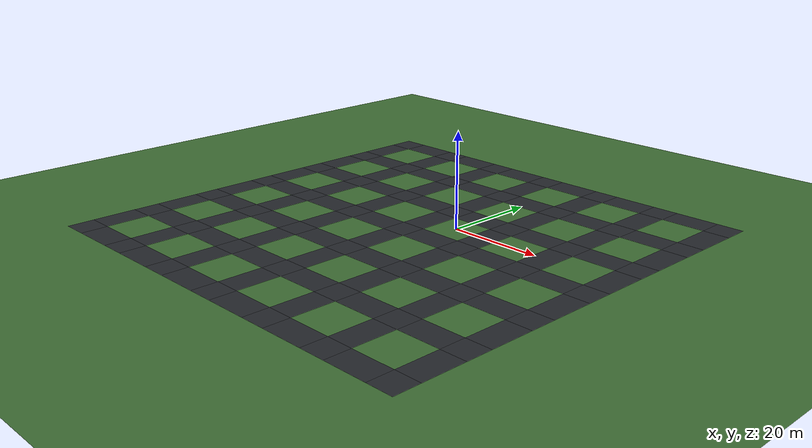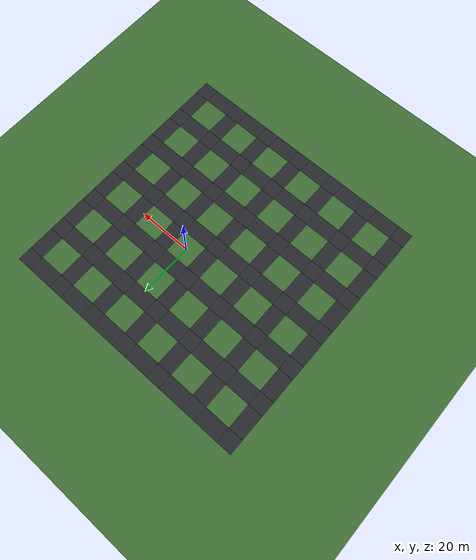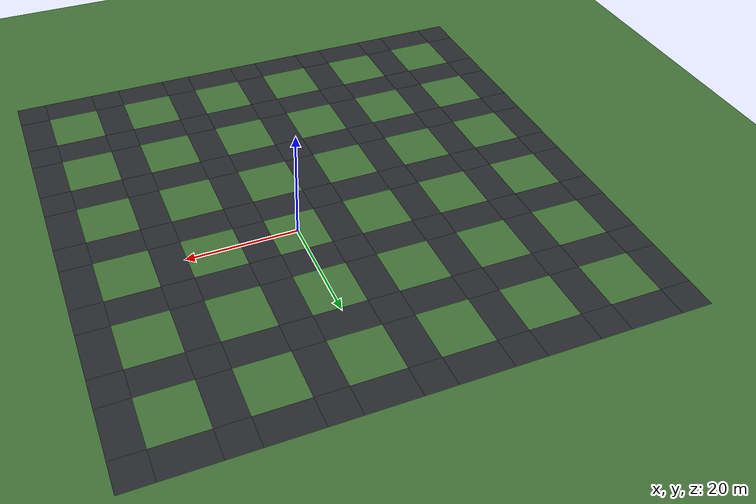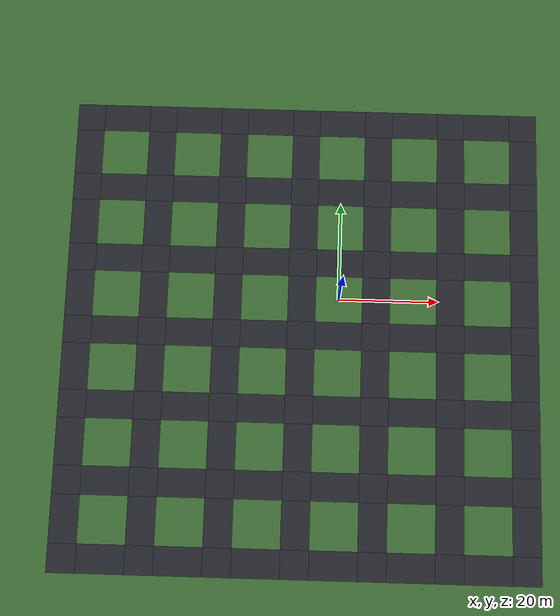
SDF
<sdf version="1.7">
 <world name="city_world">
  <model name="ground_plane">
   <static>true</static>
   <link name="link">
    <collision name="collision">
     <geometry><plane><normal>0 0 1</normal><size>300 300</size></plane></geometry>
     <surface><friction><ode><mu>100</mu><mu2>50</mu2></ode></friction></surface>
    </collision>
    <visual name="visual">
     <geometry><plane><normal>0 0 1</normal><size>300 300</size></plane></geometry>
     <material><ambient>0.24 0.42 0.20 1</ambient><diffuse>0.24 0.42 0.20 1</diffuse></material>
    </visual>
   </link>
  </model>
  <model name="city_roads">
   <static>true</static>
   <link name="link">
    <visual name="junc_0_0">
     <pose>-52.5 -52.5 0.01 0 0 0</pose>
     <geometry><box><size>5.6 5.6 0.02</size></box></geometry>
     <material><ambient>0.12 0.13 0.15 1</ambient><diffuse>0.14 0.15 0.17 1</diffuse></material>
    </visual>
    <visual name="junc_0_1">
     <pose>-52.5 -37.5 0.01 0 0 0</pose>
     <geometry><box><size>5.6 5.6 0.02</size></box></geometry>
     <material><ambient>0.12 0.13 0.15 1</ambient><diffuse>0.14 0.15 0.17 1</diffuse></material>
    </visual>
    <visual name="junc_0_2">
     <pose>-52.5 -22.5 0.01 0 0 0</pose>
     <geometry><box><size>5.6 5.6 0.02</size></box></geometry>
     <material><ambient>0.12 0.13 0.15 1</ambient><diffuse>0.14 0.15 0.17 1</diffuse></material>
    </visual>
    <visual name="junc_0_3">
     <pose>-52.5 -7.5 0.01 0 0 0</pose>
     <geometry><box><size>5.6 5.6 0.02</size></box></geometry>
     <material><ambient>0.12 0.13 0.15 1</ambient><diffuse>0.14 0.15 0.17 1</diffuse></material>
    </visual>
    <visual name="junc_0_4">
     <pose>-52.5 7.5 0.01 0 0 0</pose>
     <geometry><box><size>5.6 5.6 0.02</size></box></geometry>
     <material><ambient>0.12 0.13 0.15 1</ambient><diffuse>0.14 0.15 0.17 1</diffuse></material>
    </visual>
    <visual name="junc_0_5">
     <pose>-52.5 22.5 0.01 0 0 0</pose>
     <geometry><box><size>5.6 5.6 0.02</size></box></geometry>
     <material><ambient>0.12 0.13 0.15 1</ambient><diffuse>0.14 0.15 0.17 1</diffuse></material>
    </visual>
    <visual name="junc_0_6">
     <pose>-52.5 37.5 0.01 0 0 0</pose>
     <geometry><box><size>5.6 5.6 0.02</size></box></geometry>
     <material><ambient>0.12 0.13 0.15 1</ambient><diffuse>0.14 0.15 0.17 1</diffuse></material>
    </visual>
    <visual name="junc_1_0">
     <pose>-37.5 -52.5 0.01 0 0 0</pose>
     <geometry><box><size>5.6 5.6 0.02</size></box></geometry>
     <material><ambient>0.12 0.13 0.15 1</ambient><diffuse>0.14 0.15 0.17 1</diffuse></material>
    </visual>
    <visual name="junc_1_1">
     <pose>-37.5 -37.5 0.01 0 0 0</pose>
     <geometry><box><size>5.6 5.6 0.02</size></box></geometry>
     <material><ambient>0.12 0.13 0.15 1</ambient><diffuse>0.14 0.15 0.17 1</diffuse></material>
    </visual>
    <visual name="junc_1_2">
     <pose>-37.5 -22.5 0.01 0 0 0</pose>
     <geometry><box><size>5.6 5.6 0.02</size></box></geometry>
     <material><ambient>0.12 0.13 0.15 1</ambient><diffuse>0.14 0.15 0.17 1</diffuse></material>
    </visual>
    <visual name="junc_1_3">
     <pose>-37.5 -7.5 0.01 0 0 0</pose>
     <geometry><box><size>5.6 5.6 0.02</size></box></geometry>
     <material><ambient>0.12 0.13 0.15 1</ambient><diffuse>0.14 0.15 0.17 1</diffuse></material>
    </visual>
    <visual name="junc_1_4">
     <pose>-37.5 7.5 0.01 0 0 0</pose>
     <geometry><box><size>5.6 5.6 0.02</size></box></geometry>
     <material><ambient>0.12 0.13 0.15 1</ambient><diffuse>0.14 0.15 0.17 1</diffuse></material>
    </visual>
    <visual name="junc_1_5">
     <pose>-37.5 22.5 0.01 0 0 0</pose>
     <geometry><box><size>5.6 5.6 0.02</size></box></geometry>
     <material><ambient>0.12 0.13 0.15 1</ambient><diffuse>0.14 0.15 0.17 1</diffuse></material>
    </visual>
    <visual name="junc_1_6">
     <pose>-37.5 37.5 0.01 0 0 0</pose>
     <geometry><box><size>5.6 5.6 0.02</size></box></geometry>
     <material><ambient>0.12 0.13 0.15 1</ambient><diffuse>0.14 0.15 0.17 1</diffuse></material>
    </visual>
    <visual name="junc_2_0">
     <pose>-22.5 -52.5 0.01 0 0 0</pose>
     <geometry><box><size>5.6 5.6 0.02</size></box></geometry>
     <material><ambient>0.12 0.13 0.15 1</ambient><diffuse>0.14 0.15 0.17 1</diffuse></material>
    </visual>
    <visual name="junc_2_1">
     <pose>-22.5 -37.5 0.01 0 0 0</pose>
     <geometry><box><size>5.6 5.6 0.02</size></box></geometry>
     <material><ambient>0.12 0.13 0.15 1</ambient><diffuse>0.14 0.15 0.17 1</diffuse></material>
    </visual>
    <visual name="junc_2_2">
     <pose>-22.5 -22.5 0.01 0 0 0</pose>
     <geometry><box><size>5.6 5.6 0.02</size></box></geometry>
     <material><ambient>0.12 0.13 0.15 1</ambient><diffuse>0.14 0.15 0.17 1</diffuse></material>
    </visual>
    <visual name="junc_2_3">
     <pose>-22.5 -7.5 0.01 0 0 0</pose>
     <geometry><box><size>5.6 5.6 0.02</size></box></geometry>
     <material><ambient>0.12 0.13 0.15 1</ambient><diffuse>0.14 0.15 0.17 1</diffuse></material>
    </visual>
    <visual name="junc_2_4">
     <pose>-22.5 7.5 0.01 0 0 0</pose>
     <geometry><box><size>5.6 5.6 0.02</size></box></geometry>
     <material><ambient>0.12 0.13 0.15 1</ambient><diffuse>0.14 0.15 0.17 1</diffuse></material>
    </visual>
    <visual name="junc_2_5">
     <pose>-22.5 22.5 0.01 0 0 0</pose>
     <geometry><box><size>5.6 5.6 0.02</size></box></geometry>
     <material><ambient>0.12 0.13 0.15 1</ambient><diffuse>0.14 0.15 0.17 1</diffuse></material>
    </visual>
    <visual name="junc_2_6">
     <pose>-22.5 37.5 0.01 0 0 0</pose>
     <geometry><box><size>5.6 5.6 0.02</size></box></geometry>
     <material><ambient>0.12 0.13 0.15 1</ambient><diffuse>0.14 0.15 0.17 1</diffuse></material>
    </visual>
    <visual name="junc_3_0">
     <pose>-7.5 -52.5 0.01 0 0 0</pose>
     <geometry><box><size>5.6 5.6 0.02</size></box></geometry>
     <material><ambient>0.12 0.13 0.15 1</ambient><diffuse>0.14 0.15 0.17 1</diffuse></material>
    </visual>
    <visual name="junc_3_1">
     <pose>-7.5 -37.5 0.01 0 0 0</pose>
     <geometry><box><size>5.6 5.6 0.02</size></box></geometry>
     <material><ambient>0.12 0.13 0.15 1</ambient><diffuse>0.14 0.15 0.17 1</diffuse></material>
    </visual>
    <visual name="junc_3_2">
     <pose>-7.5 -22.5 0.01 0 0 0</pose>
     <geometry><box><size>5.6 5.6 0.02</size></box></geometry>
     <material><ambient>0.12 0.13 0.15 1</ambient><diffuse>0.14 0.15 0.17 1</diffuse></material>
    </visual>
    <visual name="junc_3_3">
     <pose>-7.5 -7.5 0.01 0 0 0</pose>
     <geometry><box><size>5.6 5.6 0.02</size></box></geometry>
     <material><ambient>0.12 0.13 0.15 1</ambient><diffuse>0.14 0.15 0.17 1</diffuse></material>
    </visual>
    <visual name="junc_3_4">
     <pose>-7.5 7.5 0.01 0 0 0</pose>
     <geometry><box><size>5.6 5.6 0.02</size></box></geometry>
     <material><ambient>0.12 0.13 0.15 1</ambient><diffuse>0.14 0.15 0.17 1</diffuse></material>
    </visual>
    <visual name="junc_3_5">
     <pose>-7.5 22.5 0.01 0 0 0</pose>
     <geometry><box><size>5.6 5.6 0.02</size></box></geometry>
     <material><ambient>0.12 0.13 0.15 1</ambient><diffuse>0.14 0.15 0.17 1</diffuse></material>
    </visual>
    <visual name="junc_3_6">
     <pose>-7.5 37.5 0.01 0 0 0</pose>
     <geometry><box><size>5.6 5.6 0.02</size></box></geometry>
     <material><ambient>0.12 0.13 0.15 1</ambient><diffuse>0.14 0.15 0.17 1</diffuse></material>
    </visual>
    <visual name="junc_4_0">
     <pose>7.5 -52.5 0.01 0 0 0</pose>
     <geometry><box><size>5.6 5.6 0.02</size></box></geometry>
     <material><ambient>0.12 0.13 0.15 1</ambient><diffuse>0.14 0.15 0.17 1</diffuse></material>
    </visual>
    <visual name="junc_4_1">
     <pose>7.5 -37.5 0.01 0 0 0</pose>
     <geometry><box><size>5.6 5.6 0.02</size></box></geometry>
     <material><ambient>0.12 0.13 0.15 1</ambient><diffuse>0.14 0.15 0.17 1</diffuse></material>
    </visual>
    <visual name="junc_4_2">
     <pose>7.5 -22.5 0.01 0 0 0</pose>
     <geometry><box><size>5.6 5.6 0.02</size></box></geometry>
     <material><ambient>0.12 0.13 0.15 1</ambient><diffuse>0.14 0.15 0.17 1</diffuse></material>
    </visual>
    <visual name="junc_4_3">
     <pose>7.5 -7.5 0.01 0 0 0</pose>
     <geometry><box><size>5.6 5.6 0.02</size></box></geometry>
     <material><ambient>0.12 0.13 0.15 1</ambient><diffuse>0.14 0.15 0.17 1</diffuse></material>
    </visual>
    <visual name="junc_4_4">
     <pose>7.5 7.5 0.01 0 0 0</pose>
     <geometry><box><size>5.6 5.6 0.02</size></box></geometry>
     <material><ambient>0.12 0.13 0.15 1</ambient><diffuse>0.14 0.15 0.17 1</diffuse></material>
    </visual>
    <visual name="junc_4_5">
     <pose>7.5 22.5 0.01 0 0 0</pose>
     <geometry><box><size>5.6 5.6 0.02</size></box></geometry>
     <material><ambient>0.12 0.13 0.15 1</ambient><diffuse>0.14 0.15 0.17 1</diffuse></material>
    </visual>
    <visual name="junc_4_6">
     <pose>7.5 37.5 0.01 0 0 0</pose>
     <geometry><box><size>5.6 5.6 0.02</size></box></geometry>
     <material><ambient>0.12 0.13 0.15 1</ambient><diffuse>0.14 0.15 0.17 1</diffuse></material>
    </visual>
    <visual name="junc_5_0">
     <pose>22.5 -52.5 0.01 0 0 0</pose>
     <geometry><box><size>5.6 5.6 0.02</size></box></geometry>
     <material><ambient>0.12 0.13 0.15 1</ambient><diffuse>0.14 0.15 0.17 1</diffuse></material>
    </visual>
    <visual name="junc_5_1">
     <pose>22.5 -37.5 0.01 0 0 0</pose>
     <geometry><box><size>5.6 5.6 0.02</size></box></geometry>
     <material><ambient>0.12 0.13 0.15 1</ambient><diffuse>0.14 0.15 0.17 1</diffuse></material>
    </visual>
    <visual name="junc_5_2">
     <pose>22.5 -22.5 0.01 0 0 0</pose>
     <geometry><box><size>5.6 5.6 0.02</size></box></geometry>
     <material><ambient>0.12 0.13 0.15 1</ambient><diffuse>0.14 0.15 0.17 1</diffuse></material>
    </visual>
    <visual name="junc_5_3">
     <pose>22.5 -7.5 0.01 0 0 0</pose>
     <geometry><box><size>5.6 5.6 0.02</size></box></geometry>
     <material><ambient>0.12 0.13 0.15 1</ambient><diffuse>0.14 0.15 0.17 1</diffuse></material>
    </visual>
    <visual name="junc_5_4">
     <pose>22.5 7.5 0.01 0 0 0</pose>
     <geometry><box><size>5.6 5.6 0.02</size></box></geometry>
     <material><ambient>0.12 0.13 0.15 1</ambient><diffuse>0.14 0.15 0.17 1</diffuse></material>
    </visual>
    <visual name="junc_5_5">
     <pose>22.5 22.5 0.01 0 0 0</pose>
     <geometry><box><size>5.6 5.6 0.02</size></box></geometry>
     <material><ambient>0.12 0.13 0.15 1</ambient><diffuse>0.14 0.15 0.17 1</diffuse></material>
    </visual>
    <visual name="junc_5_6">
     <pose>22.5 37.5 0.01 0 0 0</pose>
     <geometry><box><size>5.6 5.6 0.02</size></box></geometry>
     <material><ambient>0.12 0.13 0.15 1</ambient><diffuse>0.14 0.15 0.17 1</diffuse></material>
    </visual>
    <visual name="junc_6_0">
     <pose>37.5 -52.5 0.01 0 0 0</pose>
     <geometry><box><size>5.6 5.6 0.02</size></box></geometry>
     <material><ambient>0.12 0.13 0.15 1</ambient><diffuse>0.14 0.15 0.17 1</diffuse></material>
    </visual>
    <visual name="junc_6_1">
     <pose>37.5 -37.5 0.01 0 0 0</pose>
     <geometry><box><size>5.6 5.6 0.02</size></box></geometry>
     <material><ambient>0.12 0.13 0.15 1</ambient><diffuse>0.14 0.15 0.17 1</diffuse></material>
    </visual>
    <visual name="junc_6_2">
     <pose>37.5 -22.5 0.01 0 0 0</pose>
     <geometry><box><size>5.6 5.6 0.02</size></box></geometry>
     <material><ambient>0.12 0.13 0.15 1</ambient><diffuse>0.14 0.15 0.17 1</diffuse></material>
    </visual>
    <visual name="junc_6_3">
     <pose>37.5 -7.5 0.01 0 0 0</pose>
     <geometry><box><size>5.6 5.6 0.02</size></box></geometry>
     <material><ambient>0.12 0.13 0.15 1</ambient><diffuse>0.14 0.15 0.17 1</diffuse></material>
    </visual>
    <visual name="junc_6_4">
     <pose>37.5 7.5 0.01 0 0 0</pose>
     <geometry><box><size>5.6 5.6 0.02</size></box></geometry>
     <material><ambient>0.12 0.13 0.15 1</ambient><diffuse>0.14 0.15 0.17 1</diffuse></material>
    </visual>
    <visual name="junc_6_5">
     <pose>37.5 22.5 0.01 0 0 0</pose>
     <geometry><box><size>5.6 5.6 0.02</size></box></geometry>
     <material><ambient>0.12 0.13 0.15 1</ambient><diffuse>0.14 0.15 0.17 1</diffuse></material>
    </visual>
    <visual name="junc_6_6">
     <pose>37.5 37.5 0.01 0 0 0</pose>
     <geometry><box><size>5.6 5.6 0.02</size></box></geometry>
     <material><ambient>0.12 0.13 0.15 1</ambient><diffuse>0.14 0.15 0.17 1</diffuse></material>
    </visual>
    <visual name="road_ew_0_0">
     <pose>-45.0 -52.5 0.01 0 0 0</pose>
     <geometry><box><size>9.4 5.6 0.02</size></box></geometry>
     <material><ambient>0.12 0.13 0.15 1</ambient><diffuse>0.14 0.15 0.17 1</diffuse></material>
    </visual>
    <visual name="road_ew_0_1">
     <pose>-45.0 -37.5 0.01 0 0 0</pose>
     <geometry><box><size>9.4 5.6 0.02</size></box></geometry>
     <material><ambient>0.12 0.13 0.15 1</ambient><diffuse>0.14 0.15 0.17 1</diffuse></material>
    </visual>
    <visual name="road_ew_0_2">
     <pose>-45.0 -22.5 0.01 0 0 0</pose>
     <geometry><box><size>9.4 5.6 0.02</size></box></geometry>
     <material><ambient>0.12 0.13 0.15 1</ambient><diffuse>0.14 0.15 0.17 1</diffuse></material>
    </visual>
    <visual name="road_ew_0_3">
     <pose>-45.0 -7.5 0.01 0 0 0</pose>
     <geometry><box><size>9.4 5.6 0.02</size></box></geometry>
     <material><ambient>0.12 0.13 0.15 1</ambient><diffuse>0.14 0.15 0.17 1</diffuse></material>
    </visual>
    <visual name="road_ew_0_4">
     <pose>-45.0 7.5 0.01 0 0 0</pose>
     <geometry><box><size>9.4 5.6 0.02</size></box></geometry>
     <material><ambient>0.12 0.13 0.15 1</ambient><diffuse>0.14 0.15 0.17 1</diffuse></material>
    </visual>
    <visual name="road_ew_0_5">
     <pose>-45.0 22.5 0.01 0 0 0</pose>
     <geometry><box><size>9.4 5.6 0.02</size></box></geometry>
     <material><ambient>0.12 0.13 0.15 1</ambient><diffuse>0.14 0.15 0.17 1</diffuse></material>
    </visual>
    <visual name="road_ew_0_6">
     <pose>-45.0 37.5 0.01 0 0 0</pose>
     <geometry><box><size>9.4 5.6 0.02</size></box></geometry>
     <material><ambient>0.12 0.13 0.15 1</ambient><diffuse>0.14 0.15 0.17 1</diffuse></material>
    </visual>
    <visual name="road_ew_1_0">
     <pose>-30.0 -52.5 0.01 0 0 0</pose>
     <geometry><box><size>9.4 5.6 0.02</size></box></geometry>
     <material><ambient>0.12 0.13 0.15 1</ambient><diffuse>0.14 0.15 0.17 1</diffuse></material>
    </visual>
    <visual name="road_ew_1_1">
     <pose>-30.0 -37.5 0.01 0 0 0</pose>
     <geometry><box><size>9.4 5.6 0.02</size></box></geometry>
     <material><ambient>0.12 0.13 0.15 1</ambient><diffuse>0.14 0.15 0.17 1</diffuse></material>
    </visual>
    <visual name="road_ew_1_2">
     <pose>-30.0 -22.5 0.01 0 0 0</pose>
     <geometry><box><size>9.4 5.6 0.02</size></box></geometry>
     <material><ambient>0.12 0.13 0.15 1</ambient><diffuse>0.14 0.15 0.17 1</diffuse></material>
    </visual>
    <visual name="road_ew_1_3">
     <pose>-30.0 -7.5 0.01 0 0 0</pose>
     <geometry><box><size>9.4 5.6 0.02</size></box></geometry>
     <material><ambient>0.12 0.13 0.15 1</ambient><diffuse>0.14 0.15 0.17 1</diffuse></material>
    </visual>
    <visual name="road_ew_1_4">
     <pose>-30.0 7.5 0.01 0 0 0</pose>
     <geometry><box><size>9.4 5.6 0.02</size></box></geometry>
     <material><ambient>0.12 0.13 0.15 1</ambient><diffuse>0.14 0.15 0.17 1</diffuse></material>
    </visual>
    <visual name="road_ew_1_5">
     <pose>-30.0 22.5 0.01 0 0 0</pose>
     <geometry><box><size>9.4 5.6 0.02</size></box></geometry>
     <material><ambient>0.12 0.13 0.15 1</ambient><diffuse>0.14 0.15 0.17 1</diffuse></material>
    </visual>
    <visual name="road_ew_1_6">
     <pose>-30.0 37.5 0.01 0 0 0</pose>
     <geometry><box><size>9.4 5.6 0.02</size></box></geometry>
     <material><ambient>0.12 0.13 0.15 1</ambient><diffuse>0.14 0.15 0.17 1</diffuse></material>
    </visual>
    <visual name="road_ew_2_0">
     <pose>-15.0 -52.5 0.01 0 0 0</pose>
     <geometry><box><size>9.4 5.6 0.02</size></box></geometry>
     <material><ambient>0.12 0.13 0.15 1</ambient><diffuse>0.14 0.15 0.17 1</diffuse></material>
    </visual>
    <visual name="road_ew_2_1">
     <pose>-15.0 -37.5 0.01 0 0 0</pose>
     <geometry><box><size>9.4 5.6 0.02</size></box></geometry>
     <material><ambient>0.12 0.13 0.15 1</ambient><diffuse>0.14 0.15 0.17 1</diffuse></material>
    </visual>
    <visual name="road_ew_2_2">
     <pose>-15.0 -22.5 0.01 0 0 0</pose>
     <geometry><box><size>9.4 5.6 0.02</size></box></geometry>
     <material><ambient>0.12 0.13 0.15 1</ambient><diffuse>0.14 0.15 0.17 1</diffuse></material>
    </visual>
    <visual name="road_ew_2_3">
     <pose>-15.0 -7.5 0.01 0 0 0</pose>
     <geometry><box><size>9.4 5.6 0.02</size></box></geometry>
     <material><ambient>0.12 0.13 0.15 1</ambient><diffuse>0.14 0.15 0.17 1</diffuse></material>
    </visual>
    <visual name="road_ew_2_4">
     <pose>-15.0 7.5 0.01 0 0 0</pose>
     <geometry><box><size>9.4 5.6 0.02</size></box></geometry>
     <material><ambient>0.12 0.13 0.15 1</ambient><diffuse>0.14 0.15 0.17 1</diffuse></material>
    </visual>
    <visual name="road_ew_2_5">
     <pose>-15.0 22.5 0.01 0 0 0</pose>
     <geometry><box><size>9.4 5.6 0.02</size></box></geometry>
     <material><ambient>0.12 0.13 0.15 1</ambient><diffuse>0.14 0.15 0.17 1</diffuse></material>
    </visual>
    <visual name="road_ew_2_6">
     <pose>-15.0 37.5 0.01 0 0 0</pose>
     <geometry><box><size>9.4 5.6 0.02</size></box></geometry>
     <material><ambient>0.12 0.13 0.15 1</ambient><diffuse>0.14 0.15 0.17 1</diffuse></material>
    </visual>
    <visual name="road_ew_3_0">
     <pose>0.0 -52.5 0.01 0 0 0</pose>
     <geometry><box><size>9.4 5.6 0.02</size></box></geometry>
     <material><ambient>0.12 0.13 0.15 1</ambient><diffuse>0.14 0.15 0.17 1</diffuse></material>
    </visual>
    <visual name="road_ew_3_1">
     <pose>0.0 -37.5 0.01 0 0 0</pose>
     <geometry><box><size>9.4 5.6 0.02</size></box></geometry>
     <material><ambient>0.12 0.13 0.15 1</ambient><diffuse>0.14 0.15 0.17 1</diffuse></material>
    </visual>
    <visual name="road_ew_3_2">
     <pose>0.0 -22.5 0.01 0 0 0</pose>
     <geometry><box><size>9.4 5.6 0.02</size></box></geometry>
     <material><ambient>0.12 0.13 0.15 1</ambient><diffuse>0.14 0.15 0.17 1</diffuse></material>
    </visual>
    <visual name="road_ew_3_3">
     <pose>0.0 -7.5 0.01 0 0 0</pose>
     <geometry><box><size>9.4 5.6 0.02</size></box></geometry>
     <material><ambient>0.12 0.13 0.15 1</ambient><diffuse>0.14 0.15 0.17 1</diffuse></material>
    </visual>
    <visual name="road_ew_3_4">
     <pose>0.0 7.5 0.01 0 0 0</pose>
     <geometry><box><size>9.4 5.6 0.02</size></box></geometry>
     <material><ambient>0.12 0.13 0.15 1</ambient><diffuse>0.14 0.15 0.17 1</diffuse></material>
    </visual>
    <visual name="road_ew_3_5">
     <pose>0.0 22.5 0.01 0 0 0</pose>
     <geometry><box><size>9.4 5.6 0.02</size></box></geometry>
     <material><ambient>0.12 0.13 0.15 1</ambient><diffuse>0.14 0.15 0.17 1</diffuse></material>
    </visual>
    <visual name="road_ew_3_6">
     <pose>0.0 37.5 0.01 0 0 0</pose>
     <geometry><box><size>9.4 5.6 0.02</size></box></geometry>
     <material><ambient>0.12 0.13 0.15 1</ambient><diffuse>0.14 0.15 0.17 1</diffuse></material>
    </visual>
    <visual name="road_ew_4_0">
     <pose>15.0 -52.5 0.01 0 0 0</pose>
     <geometry><box><size>9.4 5.6 0.02</size></box></geometry>
     <material><ambient>0.12 0.13 0.15 1</ambient><diffuse>0.14 0.15 0.17 1</diffuse></material>
    </visual>
    <visual name="road_ew_4_1">
     <pose>15.0 -37.5 0.01 0 0 0</pose>
     <geometry><box><size>9.4 5.6 0.02</size></box></geometry>
     <material><ambient>0.12 0.13 0.15 1</ambient><diffuse>0.14 0.15 0.17 1</diffuse></material>
    </visual>
    <visual name="road_ew_4_2">
     <pose>15.0 -22.5 0.01 0 0 0</pose>
     <geometry><box><size>9.4 5.6 0.02</size></box></geometry>
     <material><ambient>0.12 0.13 0.15 1</ambient><diffuse>0.14 0.15 0.17 1</diffuse></material>
    </visual>
    <visual name="road_ew_4_3">
     <pose>15.0 -7.5 0.01 0 0 0</pose>
     <geometry><box><size>9.4 5.6 0.02</size></box></geometry>
     <material><ambient>0.12 0.13 0.15 1</ambient><diffuse>0.14 0.15 0.17 1</diffuse></material>
    </visual>
    <visual name="road_ew_4_4">
     <pose>15.0 7.5 0.01 0 0 0</pose>
     <geometry><box><size>9.4 5.6 0.02</size></box></geometry>
     <material><ambient>0.12 0.13 0.15 1</ambient><diffuse>0.14 0.15 0.17 1</diffuse></material>
    </visual>
    <visual name="road_ew_4_5">
     <pose>15.0 22.5 0.01 0 0 0</pose>
     <geometry><box><size>9.4 5.6 0.02</size></box></geometry>
     <material><ambient>0.12 0.13 0.15 1</ambient><diffuse>0.14 0.15 0.17 1</diffuse></material>
    </visual>
    <visual name="road_ew_4_6">
     <pose>15.0 37.5 0.01 0 0 0</pose>
     <geometry><box><size>9.4 5.6 0.02</size></box></geometry>
     <material><ambient>0.12 0.13 0.15 1</ambient><diffuse>0.14 0.15 0.17 1</diffuse></material>
    </visual>
    <visual name="road_ew_5_0">
     <pose>30.0 -52.5 0.01 0 0 0</pose>
     <geometry><box><size>9.4 5.6 0.02</size></box></geometry>
     <material><ambient>0.12 0.13 0.15 1</ambient><diffuse>0.14 0.15 0.17 1</diffuse></material>
    </visual>
    <visual name="road_ew_5_1">
     <pose>30.0 -37.5 0.01 0 0 0</pose>
     <geometry><box><size>9.4 5.6 0.02</size></box></geometry>
     <material><ambient>0.12 0.13 0.15 1</ambient><diffuse>0.14 0.15 0.17 1</diffuse></material>
    </visual>
    <visual name="road_ew_5_2">
     <pose>30.0 -22.5 0.01 0 0 0</pose>
     <geometry><box><size>9.4 5.6 0.02</size></box></geometry>
     <material><ambient>0.12 0.13 0.15 1</ambient><diffuse>0.14 0.15 0.17 1</diffuse></material>
    </visual>
    <visual name="road_ew_5_3">
     <pose>30.0 -7.5 0.01 0 0 0</pose>
     <geometry><box><size>9.4 5.6 0.02</size></box></geometry>
     <material><ambient>0.12 0.13 0.15 1</ambient><diffuse>0.14 0.15 0.17 1</diffuse></material>
    </visual>
    <visual name="road_ew_5_4">
     <pose>30.0 7.5 0.01 0 0 0</pose>
     <geometry><box><size>9.4 5.6 0.02</size></box></geometry>
     <material><ambient>0.12 0.13 0.15 1</ambient><diffuse>0.14 0.15 0.17 1</diffuse></material>
    </visual>
    <visual name="road_ew_5_5">
     <pose>30.0 22.5 0.01 0 0 0</pose>
     <geometry><box><size>9.4 5.6 0.02</size></box></geometry>
     <material><ambient>0.12 0.13 0.15 1</ambient><diffuse>0.14 0.15 0.17 1</diffuse></material>
    </visual>
    <visual name="road_ew_5_6">
     <pose>30.0 37.5 0.01 0 0 0</pose>
     <geometry><box><size>9.4 5.6 0.02</size></box></geometry>
     <material><ambient>0.12 0.13 0.15 1</ambient><diffuse>0.14 0.15 0.17 1</diffuse></material>
    </visual>
    <visual name="road_ns_0_0">
     <pose>-52.5 -45.0 0.01 0 0 0</pose>
     <geometry><box><size>5.6 9.4 0.02</size></box></geometry>
     <material><ambient>0.12 0.13 0.15 1</ambient><diffuse>0.14 0.15 0.17 1</diffuse></material>
    </visual>
    <visual name="road_ns_1_0">
     <pose>-37.5 -45.0 0.01 0 0 0</pose>
     <geometry><box><size>5.6 9.4 0.02</size></box></geometry>
     <material><ambient>0.12 0.13 0.15 1</ambient><diffuse>0.14 0.15 0.17 1</diffuse></material>
    </visual>
    <visual name="road_ns_2_0">
     <pose>-22.5 -45.0 0.01 0 0 0</pose>
     <geometry><box><size>5.6 9.4 0.02</size></box></geometry>
     <material><ambient>0.12 0.13 0.15 1</ambient><diffuse>0.14 0.15 0.17 1</diffuse></material>
    </visual>
    <visual name="road_ns_3_0">
     <pose>-7.5 -45.0 0.01 0 0 0</pose>
     <geometry><box><size>5.6 9.4 0.02</size></box></geometry>
     <material><ambient>0.12 0.13 0.15 1</ambient><diffuse>0.14 0.15 0.17 1</diffuse></material>
    </visual>
    <visual name="road_ns_4_0">
     <pose>7.5 -45.0 0.01 0 0 0</pose>
     <geometry><box><size>5.6 9.4 0.02</size></box></geometry>
     <material><ambient>0.12 0.13 0.15 1</ambient><diffuse>0.14 0.15 0.17 1</diffuse></material>
    </visual>
    <visual name="road_ns_5_0">
     <pose>22.5 -45.0 0.01 0 0 0</pose>
     <geometry><box><size>5.6 9.4 0.02</size></box></geometry>
     <material><ambient>0.12 0.13 0.15 1</ambient><diffuse>0.14 0.15 0.17 1</diffuse></material>
    </visual>
    <visual name="road_ns_6_0">
     <pose>37.5 -45.0 0.01 0 0 0</pose>
     <geometry><box><size>5.6 9.4 0.02</size></box></geometry>
     <material><ambient>0.12 0.13 0.15 1</ambient><diffuse>0.14 0.15 0.17 1</diffuse></material>
    </visual>
    <visual name="road_ns_0_1">
     <pose>-52.5 -30.0 0.01 0 0 0</pose>
     <geometry><box><size>5.6 9.4 0.02</size></box></geometry>
     <material><ambient>0.12 0.13 0.15 1</ambient><diffuse>0.14 0.15 0.17 1</diffuse></material>
    </visual>
    <visual name="road_ns_1_1">
     <pose>-37.5 -30.0 0.01 0 0 0</pose>
     <geometry><box><size>5.6 9.4 0.02</size></box></geometry>
     <material><ambient>0.12 0.13 0.15 1</ambient><diffuse>0.14 0.15 0.17 1</diffuse></material>
    </visual>
    <visual name="road_ns_2_1">
     <pose>-22.5 -30.0 0.01 0 0 0</pose>
     <geometry><box><size>5.6 9.4 0.02</size></box></geometry>
     <material><ambient>0.12 0.13 0.15 1</ambient><diffuse>0.14 0.15 0.17 1</diffuse></material>
    </visual>
    <visual name="road_ns_3_1">
     <pose>-7.5 -30.0 0.01 0 0 0</pose>
     <geometry><box><size>5.6 9.4 0.02</size></box></geometry>
     <material><ambient>0.12 0.13 0.15 1</ambient><diffuse>0.14 0.15 0.17 1</diffuse></material>
    </visual>
    <visual name="road_ns_4_1">
     <pose>7.5 -30.0 0.01 0 0 0</pose>
     <geometry><box><size>5.6 9.4 0.02</size></box></geometry>
     <material><ambient>0.12 0.13 0.15 1</ambient><diffuse>0.14 0.15 0.17 1</diffuse></material>
    </visual>
    <visual name="road_ns_5_1">
     <pose>22.5 -30.0 0.01 0 0 0</pose>
     <geometry><box><size>5.6 9.4 0.02</size></box></geometry>
     <material><ambient>0.12 0.13 0.15 1</ambient><diffuse>0.14 0.15 0.17 1</diffuse></material>
    </visual>
    <visual name="road_ns_6_1">
     <pose>37.5 -30.0 0.01 0 0 0</pose>
     <geometry><box><size>5.6 9.4 0.02</size></box></geometry>
     <material><ambient>0.12 0.13 0.15 1</ambient><diffuse>0.14 0.15 0.17 1</diffuse></material>
    </visual>
    <visual name="road_ns_0_2">
     <pose>-52.5 -15.0 0.01 0 0 0</pose>
     <geometry><box><size>5.6 9.4 0.02</size></box></geometry>
     <material><ambient>0.12 0.13 0.15 1</ambient><diffuse>0.14 0.15 0.17 1</diffuse></material>
    </visual>
    <visual name="road_ns_1_2">
     <pose>-37.5 -15.0 0.01 0 0 0</pose>
     <geometry><box><size>5.6 9.4 0.02</size></box></geometry>
     <material><ambient>0.12 0.13 0.15 1</ambient><diffuse>0.14 0.15 0.17 1</diffuse></material>
    </visual>
    <visual name="road_ns_2_2">
     <pose>-22.5 -15.0 0.01 0 0 0</pose>
     <geometry><box><size>5.6 9.4 0.02</size></box></geometry>
     <material><ambient>0.12 0.13 0.15 1</ambient><diffuse>0.14 0.15 0.17 1</diffuse></material>
    </visual>
    <visual name="road_ns_3_2">
     <pose>-7.5 -15.0 0.01 0 0 0</pose>
     <geometry><box><size>5.6 9.4 0.02</size></box></geometry>
     <material><ambient>0.12 0.13 0.15 1</ambient><diffuse>0.14 0.15 0.17 1</diffuse></material>
    </visual>
    <visual name="road_ns_4_2">
     <pose>7.5 -15.0 0.01 0 0 0</pose>
     <geometry><box><size>5.6 9.4 0.02</size></box></geometry>
     <material><ambient>0.12 0.13 0.15 1</ambient><diffuse>0.14 0.15 0.17 1</diffuse></material>
    </visual>
    <visual name="road_ns_5_2">
     <pose>22.5 -15.0 0.01 0 0 0</pose>
     <geometry><box><size>5.6 9.4 0.02</size></box></geometry>
     <material><ambient>0.12 0.13 0.15 1</ambient><diffuse>0.14 0.15 0.17 1</diffuse></material>
    </visual>
    <visual name="road_ns_6_2">
     <pose>37.5 -15.0 0.01 0 0 0</pose>
     <geometry><box><size>5.6 9.4 0.02</size></box></geometry>
     <material><ambient>0.12 0.13 0.15 1</ambient><diffuse>0.14 0.15 0.17 1</diffuse></material>
    </visual>
    <visual name="road_ns_0_3">
     <pose>-52.5 0.0 0.01 0 0 0</pose>
     <geometry><box><size>5.6 9.4 0.02</size></box></geometry>
     <material><ambient>0.12 0.13 0.15 1</ambient><diffuse>0.14 0.15 0.17 1</diffuse></material>
    </visual>
    <visual name="road_ns_1_3">
     <pose>-37.5 0.0 0.01 0 0 0</pose>
     <geometry><box><size>5.6 9.4 0.02</size></box></geometry>
     <material><ambient>0.12 0.13 0.15 1</ambient><diffuse>0.14 0.15 0.17 1</diffuse></material>
    </visual>
    <visual name="road_ns_2_3">
     <pose>-22.5 0.0 0.01 0 0 0</pose>
     <geometry><box><size>5.6 9.4 0.02</size></box></geometry>
     <material><ambient>0.12 0.13 0.15 1</ambient><diffuse>0.14 0.15 0.17 1</diffuse></material>
    </visual>
    <visual name="road_ns_3_3">
     <pose>-7.5 0.0 0.01 0 0 0</pose>
     <geometry><box><size>5.6 9.4 0.02</size></box></geometry>
     <material><ambient>0.12 0.13 0.15 1</ambient><diffuse>0.14 0.15 0.17 1</diffuse></material>
    </visual>
    <visual name="road_ns_4_3">
     <pose>7.5 0.0 0.01 0 0 0</pose>
     <geometry><box><size>5.6 9.4 0.02</size></box></geometry>
     <material><ambient>0.12 0.13 0.15 1</ambient><diffuse>0.14 0.15 0.17 1</diffuse></material>
    </visual>
    <visual name="road_ns_5_3">
     <pose>22.5 0.0 0.01 0 0 0</pose>
     <geometry><box><size>5.6 9.4 0.02</size></box></geometry>
     <material><ambient>0.12 0.13 0.15 1</ambient><diffuse>0.14 0.15 0.17 1</diffuse></material>
    </visual>
    <visual name="road_ns_6_3">
     <pose>37.5 0.0 0.01 0 0 0</pose>
     <geometry><box><size>5.6 9.4 0.02</size></box></geometry>
     <material><ambient>0.12 0.13 0.15 1</ambient><diffuse>0.14 0.15 0.17 1</diffuse></material>
    </visual>
    <visual name="road_ns_0_4">
     <pose>-52.5 15.0 0.01 0 0 0</pose>
     <geometry><box><size>5.6 9.4 0.02</size></box></geometry>
     <material><ambient>0.12 0.13 0.15 1</ambient><diffuse>0.14 0.15 0.17 1</diffuse></material>
    </visual>
    <visual name="road_ns_1_4">
     <pose>-37.5 15.0 0.01 0 0 0</pose>
     <geometry><box><size>5.6 9.4 0.02</size></box></geometry>
     <material><ambient>0.12 0.13 0.15 1</ambient><diffuse>0.14 0.15 0.17 1</diffuse></material>
    </visual>
    <visual name="road_ns_2_4">
     <pose>-22.5 15.0 0.01 0 0 0</pose>
     <geometry><box><size>5.6 9.4 0.02</size></box></geometry>
     <material><ambient>0.12 0.13 0.15 1</ambient><diffuse>0.14 0.15 0.17 1</diffuse></material>
    </visual>
    <visual name="road_ns_3_4">
     <pose>-7.5 15.0 0.01 0 0 0</pose>
     <geometry><box><size>5.6 9.4 0.02</size></box></geometry>
     <material><ambient>0.12 0.13 0.15 1</ambient><diffuse>0.14 0.15 0.17 1</diffuse></material>
    </visual>
    <visual name="road_ns_4_4">
     <pose>7.5 15.0 0.01 0 0 0</pose>
     <geometry><box><size>5.6 9.4 0.02</size></box></geometry>
     <material><ambient>0.12 0.13 0.15 1</ambient><diffuse>0.14 0.15 0.17 1</diffuse></material>
    </visual>
    <visual name="road_ns_5_4">
     <pose>22.5 15.0 0.01 0 0 0</pose>
     <geometry><box><size>5.6 9.4 0.02</size></box></geometry>
     <material><ambient>0.12 0.13 0.15 1</ambient><diffuse>0.14 0.15 0.17 1</diffuse></material>
    </visual>
    <visual name="road_ns_6_4">
     <pose>37.5 15.0 0.01 0 0 0</pose>
     <geometry><box><size>5.6 9.4 0.02</size></box></geometry>
     <material><ambient>0.12 0.13 0.15 1</ambient><diffuse>0.14 0.15 0.17 1</diffuse></material>
    </visual>
    <visual name="road_ns_0_5">
     <pose>-52.5 30.0 0.01 0 0 0</pose>
     <geometry><box><size>5.6 9.4 0.02</size></box></geometry>
     <material><ambient>0.12 0.13 0.15 1</ambient><diffuse>0.14 0.15 0.17 1</diffuse></material>
    </visual>
    <visual name="road_ns_1_5">
     <pose>-37.5 30.0 0.01 0 0 0</pose>
     <geometry><box><size>5.6 9.4 0.02</size></box></geometry>
     <material><ambient>0.12 0.13 0.15 1</ambient><diffuse>0.14 0.15 0.17 1</diffuse></material>
    </visual>
    <visual name="road_ns_2_5">
     <pose>-22.5 30.0 0.01 0 0 0</pose>
     <geometry><box><size>5.6 9.4 0.02</size></box></geometry>
     <material><ambient>0.12 0.13 0.15 1</ambient><diffuse>0.14 0.15 0.17 1</diffuse></material>
    </visual>
    <visual name="road_ns_3_5">
     <pose>-7.5 30.0 0.01 0 0 0</pose>
     <geometry><box><size>5.6 9.4 0.02</size></box></geometry>
     <material><ambient>0.12 0.13 0.15 1</ambient><diffuse>0.14 0.15 0.17 1</diffuse></material>
    </visual>
    <visual name="road_ns_4_5">
     <pose>7.5 30.0 0.01 0 0 0</pose>
     <geometry><box><size>5.6 9.4 0.02</size></box></geometry>
     <material><ambient>0.12 0.13 0.15 1</ambient><diffuse>0.14 0.15 0.17 1</diffuse></material>
    </visual>
    <visual name="road_ns_5_5">
     <pose>22.5 30.0 0.01 0 0 0</pose>
     <geometry><box><size>5.6 9.4 0.02</size></box></geometry>
     <material><ambient>0.12 0.13 0.15 1</ambient><diffuse>0.14 0.15 0.17 1</diffuse></material>
    </visual>
    <visual name="road_ns_6_5">
     <pose>37.5 30.0 0.01 0 0 0</pose>
     <geometry><box><size>5.6 9.4 0.02</size></box></geometry>
     <material><ambient>0.12 0.13 0.15 1</ambient><diffuse>0.14 0.15 0.17 1</diffuse></material>
    </visual>
   </link>
  </model>
 </world>
</sdf>
